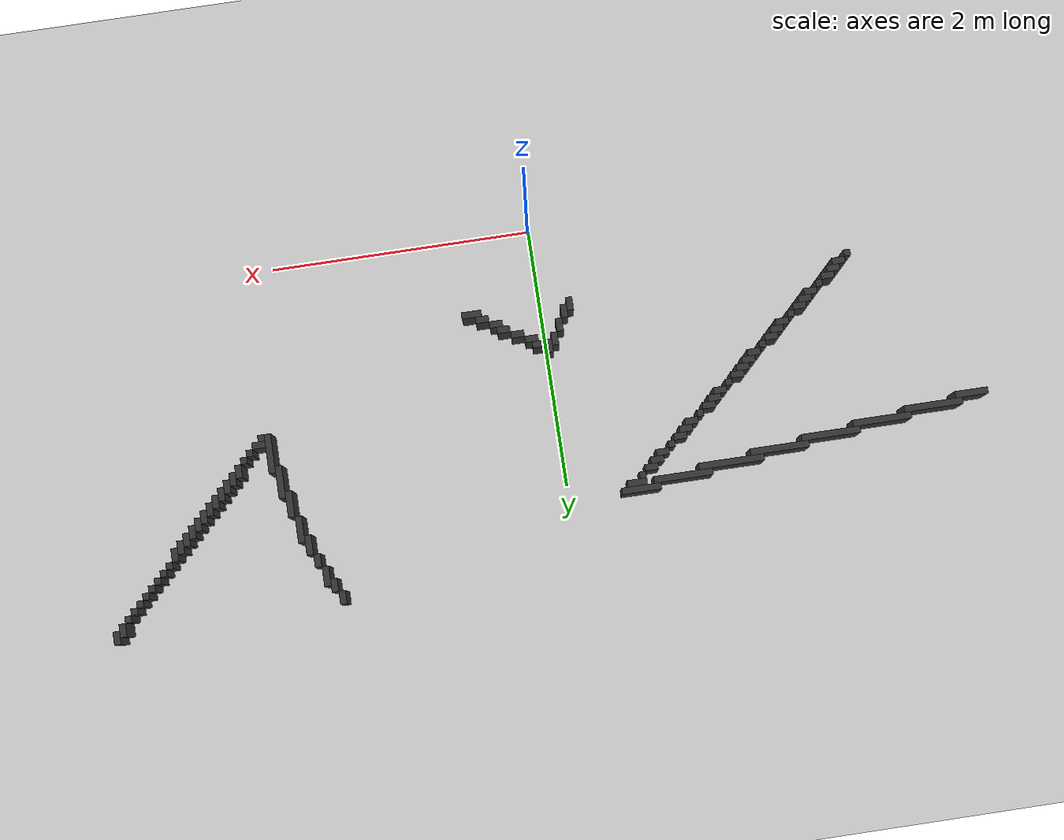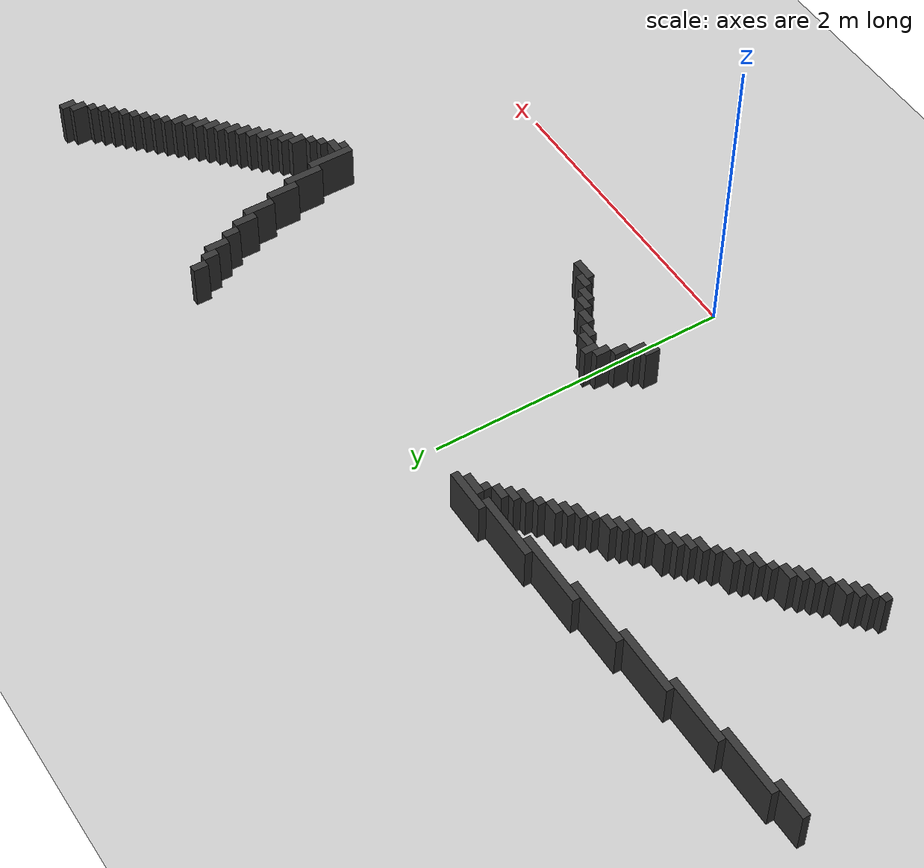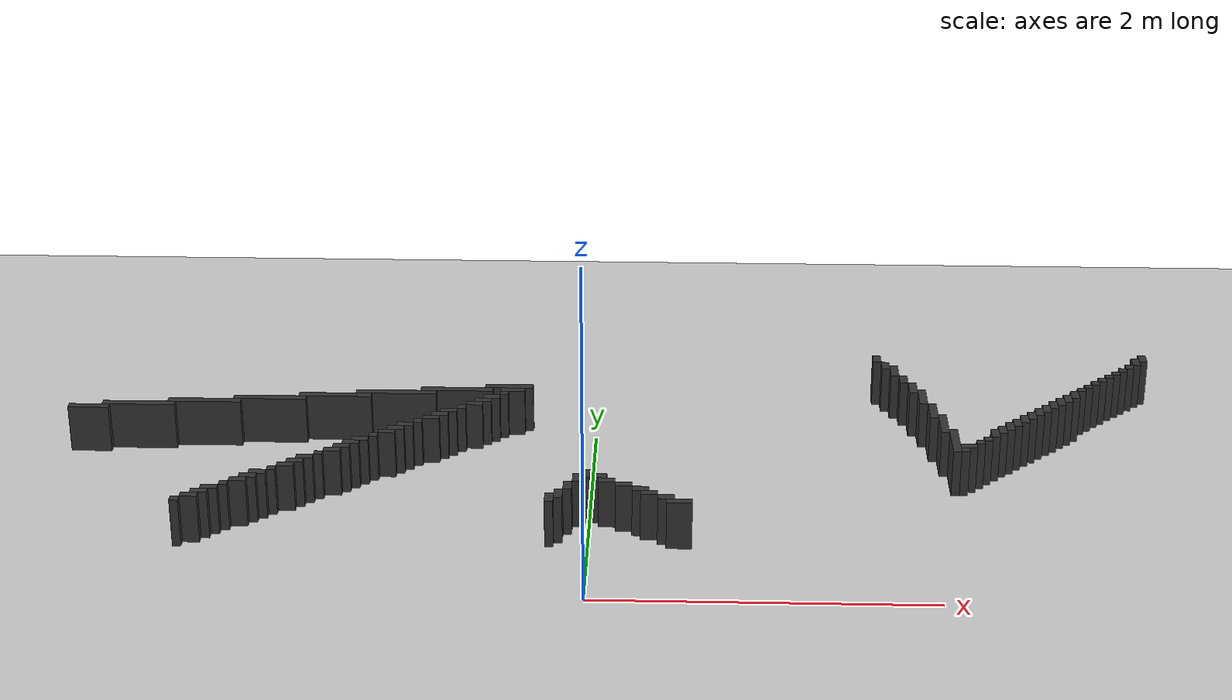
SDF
<sdf version="1.7">
 <world name="mapa_mundo">
  <model name="ground_plane">
   <static>true</static>
   <link name="link">
    <collision name="collision">
     <geometry><plane><normal>0 0 1</normal><size>10 10</size></plane></geometry>
     <surface><friction><ode><mu>100</mu><mu2>50</mu2></ode></friction></surface>
    </collision>
    <visual name="visual">
     <geometry><plane><normal>0 0 1</normal><size>10 10</size></plane></geometry>
     <material>
      <ambient>0.8 0.8 0.8 1</ambient>
      <diffuse>0.8 0.8 0.8 1</diffuse>
      <specular>0.8 0.8 0.8 1</specular>
     </material>
    </visual>
   </link>
  </model>
  <model name="wall_85">
   <static>true</static>
   <link name="link">
    <collision name="collision"><geometry><box><size>0.05 0.1 0.3</size></box></geometry></collision>
    <visual name="visual">
     <geometry><box><size>0.05 0.1 0.3</size></box></geometry>
     <material><ambient>0.2 0.2 0.2 1</ambient><diffuse>0.2 0.2 0.2 1</diffuse></material>
    </visual>
    <pose>3.475 2.6500000000000004 0.15 0 0 0</pose>
   </link>
  </model>
  <model name="wall_86">
   <static>true</static>
   <link name="link">
    <collision name="collision"><geometry><box><size>0.05 0.1 0.3</size></box></geometry></collision>
    <visual name="visual">
     <geometry><box><size>0.05 0.1 0.3</size></box></geometry>
     <material><ambient>0.2 0.2 0.2 1</ambient><diffuse>0.2 0.2 0.2 1</diffuse></material>
    </visual>
    <pose>1.7750000000000001 2.6 0.15 0 0 0</pose>
   </link>
  </model>
  <model name="wall_87">
   <static>true</static>
   <link name="link">
    <collision name="collision"><geometry><box><size>0.05 0.1 0.3</size></box></geometry></collision>
    <visual name="visual">
     <geometry><box><size>0.05 0.1 0.3</size></box></geometry>
     <material><ambient>0.2 0.2 0.2 1</ambient><diffuse>0.2 0.2 0.2 1</diffuse></material>
    </visual>
    <pose>3.4250000000000003 2.6 0.15 0 0 0</pose>
   </link>
  </model>
  <model name="wall_88">
   <static>true</static>
   <link name="link">
    <collision name="collision"><geometry><box><size>0.05 0.1 0.3</size></box></geometry></collision>
    <visual name="visual">
     <geometry><box><size>0.05 0.1 0.3</size></box></geometry>
     <material><ambient>0.2 0.2 0.2 1</ambient><diffuse>0.2 0.2 0.2 1</diffuse></material>
    </visual>
    <pose>1.8250000000000002 2.5 0.15 0 0 0</pose>
   </link>
  </model>
  <model name="wall_89">
   <static>true</static>
   <link name="link">
    <collision name="collision"><geometry><box><size>0.05 0.05 0.3</size></box></geometry></collision>
    <visual name="visual">
     <geometry><box><size>0.05 0.05 0.3</size></box></geometry>
     <material><ambient>0.2 0.2 0.2 1</ambient><diffuse>0.2 0.2 0.2 1</diffuse></material>
    </visual>
    <pose>3.375 2.5250000000000004 0.15 0 0 0</pose>
   </link>
  </model>
  <model name="wall_90">
   <static>true</static>
   <link name="link">
    <collision name="collision">
     <geometry><box><size>0.05 0.15000000000000002 0.3</size></box></geometry>
    </collision>
    <visual name="visual">
     <geometry><box><size>0.05 0.15000000000000002 0.3</size></box></geometry>
     <material><ambient>0.2 0.2 0.2 1</ambient><diffuse>0.2 0.2 0.2 1</diffuse></material>
    </visual>
    <pose>1.875 2.4250000000000003 0.15 0 0 0</pose>
   </link>
  </model>
  <model name="wall_91">
   <static>true</static>
   <link name="link">
    <collision name="collision"><geometry><box><size>0.05 0.05 0.3</size></box></geometry></collision>
    <visual name="visual">
     <geometry><box><size>0.05 0.05 0.3</size></box></geometry>
     <material><ambient>0.2 0.2 0.2 1</ambient><diffuse>0.2 0.2 0.2 1</diffuse></material>
    </visual>
    <pose>3.325 2.475 0.15 0 0 0</pose>
   </link>
  </model>
  <model name="wall_92">
   <static>true</static>
   <link name="link">
    <collision name="collision"><geometry><box><size>0.05 0.05 0.3</size></box></geometry></collision>
    <visual name="visual">
     <geometry><box><size>0.05 0.05 0.3</size></box></geometry>
     <material><ambient>0.2 0.2 0.2 1</ambient><diffuse>0.2 0.2 0.2 1</diffuse></material>
    </visual>
    <pose>3.2750000000000004 2.4250000000000003 0.15 0 0 0</pose>
   </link>
  </model>
  <model name="wall_93">
   <static>true</static>
   <link name="link">
    <collision name="collision"><geometry><box><size>0.05 0.05 0.3</size></box></geometry></collision>
    <visual name="visual">
     <geometry><box><size>0.05 0.05 0.3</size></box></geometry>
     <material><ambient>0.2 0.2 0.2 1</ambient><diffuse>0.2 0.2 0.2 1</diffuse></material>
    </visual>
    <pose>3.225 2.375 0.15 0 0 0</pose>
   </link>
  </model>
  <model name="wall_94">
   <static>true</static>
   <link name="link">
    <collision name="collision"><geometry><box><size>0.05 0.1 0.3</size></box></geometry></collision>
    <visual name="visual">
     <geometry><box><size>0.05 0.1 0.3</size></box></geometry>
     <material><ambient>0.2 0.2 0.2 1</ambient><diffuse>0.2 0.2 0.2 1</diffuse></material>
    </visual>
    <pose>1.925 2.3000000000000003 0.15 0 0 0</pose>
   </link>
  </model>
  <model name="wall_95">
   <static>true</static>
   <link name="link">
    <collision name="collision"><geometry><box><size>0.05 0.05 0.3</size></box></geometry></collision>
    <visual name="visual">
     <geometry><box><size>0.05 0.05 0.3</size></box></geometry>
     <material><ambient>0.2 0.2 0.2 1</ambient><diffuse>0.2 0.2 0.2 1</diffuse></material>
    </visual>
    <pose>3.1750000000000003 2.325 0.15 0 0 0</pose>
   </link>
  </model>
  <model name="wall_96">
   <static>true</static>
   <link name="link">
    <collision name="collision"><geometry><box><size>0.05 0.05 0.3</size></box></geometry></collision>
    <visual name="visual">
     <geometry><box><size>0.05 0.05 0.3</size></box></geometry>
     <material><ambient>0.2 0.2 0.2 1</ambient><diffuse>0.2 0.2 0.2 1</diffuse></material>
    </visual>
    <pose>3.125 2.275 0.15 0 0 0</pose>
   </link>
  </model>
  <model name="wall_97">
   <static>true</static>
   <link name="link">
    <collision name="collision">
     <geometry><box><size>0.05 0.15000000000000002 0.3</size></box></geometry>
    </collision>
    <visual name="visual">
     <geometry><box><size>0.05 0.15000000000000002 0.3</size></box></geometry>
     <material><ambient>0.2 0.2 0.2 1</ambient><diffuse>0.2 0.2 0.2 1</diffuse></material>
    </visual>
    <pose>1.975 2.1750000000000003 0.15 0 0 0</pose>
   </link>
  </model>
  <model name="wall_98">
   <static>true</static>
   <link name="link">
    <collision name="collision"><geometry><box><size>0.05 0.05 0.3</size></box></geometry></collision>
    <visual name="visual">
     <geometry><box><size>0.05 0.05 0.3</size></box></geometry>
     <material><ambient>0.2 0.2 0.2 1</ambient><diffuse>0.2 0.2 0.2 1</diffuse></material>
    </visual>
    <pose>3.075 2.225 0.15 0 0 0</pose>
   </link>
  </model>
  <model name="wall_99">
   <static>true</static>
   <link name="link">
    <collision name="collision"><geometry><box><size>0.05 0.05 0.3</size></box></geometry></collision>
    <visual name="visual">
     <geometry><box><size>0.05 0.05 0.3</size></box></geometry>
     <material><ambient>0.2 0.2 0.2 1</ambient><diffuse>0.2 0.2 0.2 1</diffuse></material>
    </visual>
    <pose>3.0250000000000004 2.1750000000000003 0.15 0 0 0</pose>
   </link>
  </model>
  <model name="wall_100">
   <static>true</static>
   <link name="link">
    <collision name="collision">
     <geometry><box><size>0.30000000000000004 0.05 0.3</size></box></geometry>
    </collision>
    <visual name="visual">
     <geometry><box><size>0.30000000000000004 0.05 0.3</size></box></geometry>
     <material><ambient>0.2 0.2 0.2 1</ambient><diffuse>0.2 0.2 0.2 1</diffuse></material>
    </visual>
    <pose>-0.55 2.125 0.15 0 0 0</pose>
   </link>
  </model>
  <model name="wall_101">
   <static>true</static>
   <link name="link">
    <collision name="collision"><geometry><box><size>0.05 0.2 0.3</size></box></geometry></collision>
    <visual name="visual">
     <geometry><box><size>0.05 0.2 0.3</size></box></geometry>
     <material><ambient>0.2 0.2 0.2 1</ambient><diffuse>0.2 0.2 0.2 1</diffuse></material>
    </visual>
    <pose>2.025 2.0500000000000003 0.15 0 0 0</pose>
   </link>
  </model>
  <model name="wall_102">
   <static>true</static>
   <link name="link">
    <collision name="collision"><geometry><box><size>0.05 0.1 0.3</size></box></geometry></collision>
    <visual name="visual">
     <geometry><box><size>0.05 0.1 0.3</size></box></geometry>
     <material><ambient>0.2 0.2 0.2 1</ambient><diffuse>0.2 0.2 0.2 1</diffuse></material>
    </visual>
    <pose>2.975 2.1 0.15 0 0 0</pose>
   </link>
  </model>
  <model name="wall_103">
   <static>true</static>
   <link name="link">
    <collision name="collision"><geometry><box><size>0.45 0.05 0.3</size></box></geometry></collision>
    <visual name="visual">
     <geometry><box><size>0.45 0.05 0.3</size></box></geometry>
     <material><ambient>0.2 0.2 0.2 1</ambient><diffuse>0.2 0.2 0.2 1</diffuse></material>
    </visual>
    <pose>-0.875 2.075 0.15 0 0 0</pose>
   </link>
  </model>
  <model name="wall_104">
   <static>true</static>
   <link name="link">
    <collision name="collision">
     <geometry><box><size>0.15000000000000002 0.05 0.3</size></box></geometry>
    </collision>
    <visual name="visual">
     <geometry><box><size>0.15000000000000002 0.05 0.3</size></box></geometry>
     <material><ambient>0.2 0.2 0.2 1</ambient><diffuse>0.2 0.2 0.2 1</diffuse></material>
    </visual>
    <pose>-0.525 2.075 0.15 0 0 0</pose>
   </link>
  </model>
  <model name="wall_105">
   <static>true</static>
   <link name="link">
    <collision name="collision"><geometry><box><size>0.05 0.1 0.3</size></box></geometry></collision>
    <visual name="visual">
     <geometry><box><size>0.05 0.1 0.3</size></box></geometry>
     <material><ambient>0.2 0.2 0.2 1</ambient><diffuse>0.2 0.2 0.2 1</diffuse></material>
    </visual>
    <pose>2.9250000000000003 2.0500000000000003 0.15 0 0 0</pose>
   </link>
  </model>
  <model name="wall_106">
   <static>true</static>
   <link name="link">
    <collision name="collision"><geometry><box><size>0.5 0.05 0.3</size></box></geometry></collision>
    <visual name="visual">
     <geometry><box><size>0.5 0.05 0.3</size></box></geometry>
     <material><ambient>0.2 0.2 0.2 1</ambient><diffuse>0.2 0.2 0.2 1</diffuse></material>
    </visual>
    <pose>-1.25 2.025 0.15 0 0 0</pose>
   </link>
  </model>
  <model name="wall_107">
   <static>true</static>
   <link name="link">
    <collision name="collision"><geometry><box><size>0.05 0.05 0.3</size></box></geometry></collision>
    <visual name="visual">
     <geometry><box><size>0.05 0.05 0.3</size></box></geometry>
     <material><ambient>0.2 0.2 0.2 1</ambient><diffuse>0.2 0.2 0.2 1</diffuse></material>
    </visual>
    <pose>-0.5750000000000001 2.025 0.15 0 0 0</pose>
   </link>
  </model>
  <model name="wall_108">
   <static>true</static>
   <link name="link">
    <collision name="collision"><geometry><box><size>0.05 0.1 0.3</size></box></geometry></collision>
    <visual name="visual">
     <geometry><box><size>0.05 0.1 0.3</size></box></geometry>
     <material><ambient>0.2 0.2 0.2 1</ambient><diffuse>0.2 0.2 0.2 1</diffuse></material>
    </visual>
    <pose>2.875 2.0 0.15 0 0 0</pose>
   </link>
  </model>
  <model name="wall_109">
   <static>true</static>
   <link name="link">
    <collision name="collision"><geometry><box><size>0.45 0.05 0.3</size></box></geometry></collision>
    <visual name="visual">
     <geometry><box><size>0.45 0.05 0.3</size></box></geometry>
     <material><ambient>0.2 0.2 0.2 1</ambient><diffuse>0.2 0.2 0.2 1</diffuse></material>
    </visual>
    <pose>-1.625 1.975 0.15 0 0 0</pose>
   </link>
  </model>
  <model name="wall_110">
   <static>true</static>
   <link name="link">
    <collision name="collision"><geometry><box><size>0.1 0.05 0.3</size></box></geometry></collision>
    <visual name="visual">
     <geometry><box><size>0.1 0.05 0.3</size></box></geometry>
     <material><ambient>0.2 0.2 0.2 1</ambient><diffuse>0.2 0.2 0.2 1</diffuse></material>
    </visual>
    <pose>-0.65 1.975 0.15 0 0 0</pose>
   </link>
  </model>
  <model name="wall_111">
   <static>true</static>
   <link name="link">
    <collision name="collision"><geometry><box><size>0.05 0.1 0.3</size></box></geometry></collision>
    <visual name="visual">
     <geometry><box><size>0.05 0.1 0.3</size></box></geometry>
     <material><ambient>0.2 0.2 0.2 1</ambient><diffuse>0.2 0.2 0.2 1</diffuse></material>
    </visual>
    <pose>2.825 1.9500000000000002 0.15 0 0 0</pose>
   </link>
  </model>
  <model name="wall_112">
   <static>true</static>
   <link name="link">
    <collision name="collision"><geometry><box><size>0.45 0.05 0.3</size></box></geometry></collision>
    <visual name="visual">
     <geometry><box><size>0.45 0.05 0.3</size></box></geometry>
     <material><ambient>0.2 0.2 0.2 1</ambient><diffuse>0.2 0.2 0.2 1</diffuse></material>
    </visual>
    <pose>-2.025 1.925 0.15 0 0 0</pose>
   </link>
  </model>
  <model name="wall_113">
   <static>true</static>
   <link name="link">
    <collision name="collision"><geometry><box><size>0.1 0.05 0.3</size></box></geometry></collision>
    <visual name="visual">
     <geometry><box><size>0.1 0.05 0.3</size></box></geometry>
     <material><ambient>0.2 0.2 0.2 1</ambient><diffuse>0.2 0.2 0.2 1</diffuse></material>
    </visual>
    <pose>-0.7000000000000001 1.925 0.15 0 0 0</pose>
   </link>
  </model>
  <model name="wall_114">
   <static>true</static>
   <link name="link">
    <collision name="collision"><geometry><box><size>0.05 0.2 0.3</size></box></geometry></collision>
    <visual name="visual">
     <geometry><box><size>0.05 0.2 0.3</size></box></geometry>
     <material><ambient>0.2 0.2 0.2 1</ambient><diffuse>0.2 0.2 0.2 1</diffuse></material>
    </visual>
    <pose>2.075 1.85 0.15 0 0 0</pose>
   </link>
  </model>
  <model name="wall_115">
   <static>true</static>
   <link name="link">
    <collision name="collision"><geometry><box><size>0.05 0.1 0.3</size></box></geometry></collision>
    <visual name="visual">
     <geometry><box><size>0.05 0.1 0.3</size></box></geometry>
     <material><ambient>0.2 0.2 0.2 1</ambient><diffuse>0.2 0.2 0.2 1</diffuse></material>
    </visual>
    <pose>2.7750000000000004 1.9000000000000001 0.15 0 0 0</pose>
   </link>
  </model>
  <model name="wall_116">
   <static>true</static>
   <link name="link">
    <collision name="collision"><geometry><box><size>0.45 0.05 0.3</size></box></geometry></collision>
    <visual name="visual">
     <geometry><box><size>0.45 0.05 0.3</size></box></geometry>
     <material><ambient>0.2 0.2 0.2 1</ambient><diffuse>0.2 0.2 0.2 1</diffuse></material>
    </visual>
    <pose>-2.4250000000000003 1.875 0.15 0 0 0</pose>
   </link>
  </model>
  <model name="wall_117">
   <static>true</static>
   <link name="link">
    <collision name="collision"><geometry><box><size>0.1 0.05 0.3</size></box></geometry></collision>
    <visual name="visual">
     <geometry><box><size>0.1 0.05 0.3</size></box></geometry>
     <material><ambient>0.2 0.2 0.2 1</ambient><diffuse>0.2 0.2 0.2 1</diffuse></material>
    </visual>
    <pose>-0.75 1.875 0.15 0 0 0</pose>
   </link>
  </model>
  <model name="wall_118">
   <static>true</static>
   <link name="link">
    <collision name="collision"><geometry><box><size>0.05 0.1 0.3</size></box></geometry></collision>
    <visual name="visual">
     <geometry><box><size>0.05 0.1 0.3</size></box></geometry>
     <material><ambient>0.2 0.2 0.2 1</ambient><diffuse>0.2 0.2 0.2 1</diffuse></material>
    </visual>
    <pose>2.725 1.85 0.15 0 0 0</pose>
   </link>
  </model>
  <model name="wall_119">
   <static>true</static>
   <link name="link">
    <collision name="collision"><geometry><box><size>0.45 0.05 0.3</size></box></geometry></collision>
    <visual name="visual">
     <geometry><box><size>0.45 0.05 0.3</size></box></geometry>
     <material><ambient>0.2 0.2 0.2 1</ambient><diffuse>0.2 0.2 0.2 1</diffuse></material>
    </visual>
    <pose>-2.825 1.8250000000000002 0.15 0 0 0</pose>
   </link>
  </model>
  <model name="wall_120">
   <static>true</static>
   <link name="link">
    <collision name="collision"><geometry><box><size>0.05 0.05 0.3</size></box></geometry></collision>
    <visual name="visual">
     <geometry><box><size>0.05 0.05 0.3</size></box></geometry>
     <material><ambient>0.2 0.2 0.2 1</ambient><diffuse>0.2 0.2 0.2 1</diffuse></material>
    </visual>
    <pose>-0.8250000000000001 1.8250000000000002 0.15 0 0 0</pose>
   </link>
  </model>
  <model name="wall_121">
   <static>true</static>
   <link name="link">
    <collision name="collision"><geometry><box><size>0.05 0.1 0.3</size></box></geometry></collision>
    <visual name="visual">
     <geometry><box><size>0.05 0.1 0.3</size></box></geometry>
     <material><ambient>0.2 0.2 0.2 1</ambient><diffuse>0.2 0.2 0.2 1</diffuse></material>
    </visual>
    <pose>2.6750000000000003 1.8 0.15 0 0 0</pose>
   </link>
  </model>
  <model name="wall_122">
   <static>true</static>
   <link name="link">
    <collision name="collision"><geometry><box><size>0.25 0.05 0.3</size></box></geometry></collision>
    <visual name="visual">
     <geometry><box><size>0.25 0.05 0.3</size></box></geometry>
     <material><ambient>0.2 0.2 0.2 1</ambient><diffuse>0.2 0.2 0.2 1</diffuse></material>
    </visual>
    <pose>-3.125 1.7750000000000001 0.15 0 0 0</pose>
   </link>
  </model>
  <model name="wall_123">
   <static>true</static>
   <link name="link">
    <collision name="collision"><geometry><box><size>0.1 0.05 0.3</size></box></geometry></collision>
    <visual name="visual">
     <geometry><box><size>0.1 0.05 0.3</size></box></geometry>
     <material><ambient>0.2 0.2 0.2 1</ambient><diffuse>0.2 0.2 0.2 1</diffuse></material>
    </visual>
    <pose>-0.9 1.7750000000000001 0.15 0 0 0</pose>
   </link>
  </model>
  <model name="wall_124">
   <static>true</static>
   <link name="link">
    <collision name="collision"><geometry><box><size>0.05 0.25 0.3</size></box></geometry></collision>
    <visual name="visual">
     <geometry><box><size>0.05 0.25 0.3</size></box></geometry>
     <material><ambient>0.2 0.2 0.2 1</ambient><diffuse>0.2 0.2 0.2 1</diffuse></material>
    </visual>
    <pose>2.125 1.675 0.15 0 0 0</pose>
   </link>
  </model>
  <model name="wall_125">
   <static>true</static>
   <link name="link">
    <collision name="collision"><geometry><box><size>0.05 0.1 0.3</size></box></geometry></collision>
    <visual name="visual">
     <geometry><box><size>0.05 0.1 0.3</size></box></geometry>
     <material><ambient>0.2 0.2 0.2 1</ambient><diffuse>0.2 0.2 0.2 1</diffuse></material>
    </visual>
    <pose>2.625 1.75 0.15 0 0 0</pose>
   </link>
  </model>
  <model name="wall_126">
   <static>true</static>
   <link name="link">
    <collision name="collision"><geometry><box><size>0.1 0.05 0.3</size></box></geometry></collision>
    <visual name="visual">
     <geometry><box><size>0.1 0.05 0.3</size></box></geometry>
     <material><ambient>0.2 0.2 0.2 1</ambient><diffuse>0.2 0.2 0.2 1</diffuse></material>
    </visual>
    <pose>-0.9500000000000001 1.725 0.15 0 0 0</pose>
   </link>
  </model>
  <model name="wall_127">
   <static>true</static>
   <link name="link">
    <collision name="collision"><geometry><box><size>0.05 0.1 0.3</size></box></geometry></collision>
    <visual name="visual">
     <geometry><box><size>0.05 0.1 0.3</size></box></geometry>
     <material><ambient>0.2 0.2 0.2 1</ambient><diffuse>0.2 0.2 0.2 1</diffuse></material>
    </visual>
    <pose>2.575 1.7000000000000002 0.15 0 0 0</pose>
   </link>
  </model>
  <model name="wall_128">
   <static>true</static>
   <link name="link">
    <collision name="collision"><geometry><box><size>0.1 0.05 0.3</size></box></geometry></collision>
    <visual name="visual">
     <geometry><box><size>0.1 0.05 0.3</size></box></geometry>
     <material><ambient>0.2 0.2 0.2 1</ambient><diffuse>0.2 0.2 0.2 1</diffuse></material>
    </visual>
    <pose>-1.0 1.675 0.15 0 0 0</pose>
   </link>
  </model>
  <model name="wall_129">
   <static>true</static>
   <link name="link">
    <collision name="collision"><geometry><box><size>0.05 0.1 0.3</size></box></geometry></collision>
    <visual name="visual">
     <geometry><box><size>0.05 0.1 0.3</size></box></geometry>
     <material><ambient>0.2 0.2 0.2 1</ambient><diffuse>0.2 0.2 0.2 1</diffuse></material>
    </visual>
    <pose>2.5250000000000004 1.6500000000000001 0.15 0 0 0</pose>
   </link>
  </model>
  <model name="wall_130">
   <static>true</static>
   <link name="link">
    <collision name="collision"><geometry><box><size>0.05 0.05 0.3</size></box></geometry></collision>
    <visual name="visual">
     <geometry><box><size>0.05 0.05 0.3</size></box></geometry>
     <material><ambient>0.2 0.2 0.2 1</ambient><diffuse>0.2 0.2 0.2 1</diffuse></material>
    </visual>
    <pose>-1.075 1.625 0.15 0 0 0</pose>
   </link>
  </model>
  <model name="wall_131">
   <static>true</static>
   <link name="link">
    <collision name="collision"><geometry><box><size>0.05 0.1 0.3</size></box></geometry></collision>
    <visual name="visual">
     <geometry><box><size>0.05 0.1 0.3</size></box></geometry>
     <material><ambient>0.2 0.2 0.2 1</ambient><diffuse>0.2 0.2 0.2 1</diffuse></material>
    </visual>
    <pose>2.475 1.6 0.15 0 0 0</pose>
   </link>
  </model>
  <model name="wall_132">
   <static>true</static>
   <link name="link">
    <collision name="collision"><geometry><box><size>0.1 0.05 0.3</size></box></geometry></collision>
    <visual name="visual">
     <geometry><box><size>0.1 0.05 0.3</size></box></geometry>
     <material><ambient>0.2 0.2 0.2 1</ambient><diffuse>0.2 0.2 0.2 1</diffuse></material>
    </visual>
    <pose>-1.1500000000000001 1.5750000000000002 0.15 0 0 0</pose>
   </link>
  </model>
  <model name="wall_133">
   <static>true</static>
   <link name="link">
    <collision name="collision">
     <geometry><box><size>0.05 0.30000000000000004 0.3</size></box></geometry>
    </collision>
    <visual name="visual">
     <geometry><box><size>0.05 0.30000000000000004 0.3</size></box></geometry>
     <material><ambient>0.2 0.2 0.2 1</ambient><diffuse>0.2 0.2 0.2 1</diffuse></material>
    </visual>
    <pose>2.1750000000000003 1.4500000000000002 0.15 0 0 0</pose>
   </link>
  </model>
  <model name="wall_134">
   <static>true</static>
   <link name="link">
    <collision name="collision"><geometry><box><size>0.05 0.1 0.3</size></box></geometry></collision>
    <visual name="visual">
     <geometry><box><size>0.05 0.1 0.3</size></box></geometry>
     <material><ambient>0.2 0.2 0.2 1</ambient><diffuse>0.2 0.2 0.2 1</diffuse></material>
    </visual>
    <pose>2.4250000000000003 1.55 0.15 0 0 0</pose>
   </link>
  </model>
  <model name="wall_135">
   <static>true</static>
   <link name="link">
    <collision name="collision"><geometry><box><size>0.1 0.05 0.3</size></box></geometry></collision>
    <visual name="visual">
     <geometry><box><size>0.1 0.05 0.3</size></box></geometry>
     <material><ambient>0.2 0.2 0.2 1</ambient><diffuse>0.2 0.2 0.2 1</diffuse></material>
    </visual>
    <pose>-1.2000000000000002 1.5250000000000001 0.15 0 0 0</pose>
   </link>
  </model>
  <model name="wall_136">
   <static>true</static>
   <link name="link">
    <collision name="collision"><geometry><box><size>0.1 0.05 0.3</size></box></geometry></collision>
    <visual name="visual">
     <geometry><box><size>0.1 0.05 0.3</size></box></geometry>
     <material><ambient>0.2 0.2 0.2 1</ambient><diffuse>0.2 0.2 0.2 1</diffuse></material>
    </visual>
    <pose>-1.25 1.475 0.15 0 0 0</pose>
   </link>
  </model>
  <model name="wall_137">
   <static>true</static>
   <link name="link">
    <collision name="collision"><geometry><box><size>0.05 0.05 0.3</size></box></geometry></collision>
    <visual name="visual">
     <geometry><box><size>0.05 0.05 0.3</size></box></geometry>
     <material><ambient>0.2 0.2 0.2 1</ambient><diffuse>0.2 0.2 0.2 1</diffuse></material>
    </visual>
    <pose>2.375 1.475 0.15 0 0 0</pose>
   </link>
  </model>
  <model name="wall_138">
   <static>true</static>
   <link name="link">
    <collision name="collision"><geometry><box><size>0.05 0.05 0.3</size></box></geometry></collision>
    <visual name="visual">
     <geometry><box><size>0.05 0.05 0.3</size></box></geometry>
     <material><ambient>0.2 0.2 0.2 1</ambient><diffuse>0.2 0.2 0.2 1</diffuse></material>
    </visual>
    <pose>-1.3250000000000002 1.425 0.15 0 0 0</pose>
   </link>
  </model>
  <model name="wall_139">
   <static>true</static>
   <link name="link">
    <collision name="collision"><geometry><box><size>0.05 0.05 0.3</size></box></geometry></collision>
    <visual name="visual">
     <geometry><box><size>0.05 0.05 0.3</size></box></geometry>
     <material><ambient>0.2 0.2 0.2 1</ambient><diffuse>0.2 0.2 0.2 1</diffuse></material>
    </visual>
    <pose>2.325 1.425 0.15 0 0 0</pose>
   </link>
  </model>
  <model name="wall_140">
   <static>true</static>
   <link name="link">
    <collision name="collision"><geometry><box><size>0.1 0.05 0.3</size></box></geometry></collision>
    <visual name="visual">
     <geometry><box><size>0.1 0.05 0.3</size></box></geometry>
     <material><ambient>0.2 0.2 0.2 1</ambient><diffuse>0.2 0.2 0.2 1</diffuse></material>
    </visual>
    <pose>-1.4000000000000001 1.375 0.15 0 0 0</pose>
   </link>
  </model>
  <model name="wall_141">
   <static>true</static>
   <link name="link">
    <collision name="collision"><geometry><box><size>0.1 0.05 0.3</size></box></geometry></collision>
    <visual name="visual">
     <geometry><box><size>0.1 0.05 0.3</size></box></geometry>
     <material><ambient>0.2 0.2 0.2 1</ambient><diffuse>0.2 0.2 0.2 1</diffuse></material>
    </visual>
    <pose>2.25 1.375 0.15 0 0 0</pose>
   </link>
  </model>
  <model name="wall_142">
   <static>true</static>
   <link name="link">
    <collision name="collision"><geometry><box><size>0.1 0.05 0.3</size></box></geometry></collision>
    <visual name="visual">
     <geometry><box><size>0.1 0.05 0.3</size></box></geometry>
     <material><ambient>0.2 0.2 0.2 1</ambient><diffuse>0.2 0.2 0.2 1</diffuse></material>
    </visual>
    <pose>-1.4500000000000002 1.3250000000000002 0.15 0 0 0</pose>
   </link>
  </model>
  <model name="wall_143">
   <static>true</static>
   <link name="link">
    <collision name="collision"><geometry><box><size>0.05 0.05 0.3</size></box></geometry></collision>
    <visual name="visual">
     <geometry><box><size>0.05 0.05 0.3</size></box></geometry>
     <material><ambient>0.2 0.2 0.2 1</ambient><diffuse>0.2 0.2 0.2 1</diffuse></material>
    </visual>
    <pose>2.225 1.3250000000000002 0.15 0 0 0</pose>
   </link>
  </model>
  <model name="wall_144">
   <static>true</static>
   <link name="link">
    <collision name="collision"><geometry><box><size>0.1 0.05 0.3</size></box></geometry></collision>
    <visual name="visual">
     <geometry><box><size>0.1 0.05 0.3</size></box></geometry>
     <material><ambient>0.2 0.2 0.2 1</ambient><diffuse>0.2 0.2 0.2 1</diffuse></material>
    </visual>
    <pose>-1.5 1.2750000000000001 0.15 0 0 0</pose>
   </link>
  </model>
  <model name="wall_145">
   <static>true</static>
   <link name="link">
    <collision name="collision"><geometry><box><size>0.1 0.05 0.3</size></box></geometry></collision>
    <visual name="visual">
     <geometry><box><size>0.1 0.05 0.3</size></box></geometry>
     <material><ambient>0.2 0.2 0.2 1</ambient><diffuse>0.2 0.2 0.2 1</diffuse></material>
    </visual>
    <pose>-1.55 1.225 0.15 0 0 0</pose>
   </link>
  </model>
  <model name="wall_146">
   <static>true</static>
   <link name="link">
    <collision name="collision"><geometry><box><size>0.05 0.05 0.3</size></box></geometry></collision>
    <visual name="visual">
     <geometry><box><size>0.05 0.05 0.3</size></box></geometry>
     <material><ambient>0.2 0.2 0.2 1</ambient><diffuse>0.2 0.2 0.2 1</diffuse></material>
    </visual>
    <pose>-1.625 1.175 0.15 0 0 0</pose>
   </link>
  </model>
  <model name="wall_147">
   <static>true</static>
   <link name="link">
    <collision name="collision"><geometry><box><size>0.1 0.05 0.3</size></box></geometry></collision>
    <visual name="visual">
     <geometry><box><size>0.1 0.05 0.3</size></box></geometry>
     <material><ambient>0.2 0.2 0.2 1</ambient><diffuse>0.2 0.2 0.2 1</diffuse></material>
    </visual>
    <pose>-1.7000000000000002 1.125 0.15 0 0 0</pose>
   </link>
  </model>
  <model name="wall_148">
   <static>true</static>
   <link name="link">
    <collision name="collision"><geometry><box><size>0.1 0.05 0.3</size></box></geometry></collision>
    <visual name="visual">
     <geometry><box><size>0.1 0.05 0.3</size></box></geometry>
     <material><ambient>0.2 0.2 0.2 1</ambient><diffuse>0.2 0.2 0.2 1</diffuse></material>
    </visual>
    <pose>-1.75 1.075 0.15 0 0 0</pose>
   </link>
  </model>
  <model name="wall_149">
   <static>true</static>
   <link name="link">
    <collision name="collision"><geometry><box><size>0.1 0.05 0.3</size></box></geometry></collision>
    <visual name="visual">
     <geometry><box><size>0.1 0.05 0.3</size></box></geometry>
     <material><ambient>0.2 0.2 0.2 1</ambient><diffuse>0.2 0.2 0.2 1</diffuse></material>
    </visual>
    <pose>-1.8 1.0250000000000001 0.15 0 0 0</pose>
   </link>
  </model>
  <model name="wall_150">
   <static>true</static>
   <link name="link">
    <collision name="collision"><geometry><box><size>0.05 0.05 0.3</size></box></geometry></collision>
    <visual name="visual">
     <geometry><box><size>0.05 0.05 0.3</size></box></geometry>
     <material><ambient>0.2 0.2 0.2 1</ambient><diffuse>0.2 0.2 0.2 1</diffuse></material>
    </visual>
    <pose>-1.875 0.9750000000000001 0.15 0 0 0</pose>
   </link>
  </model>
  <model name="wall_151">
   <static>true</static>
   <link name="link">
    <collision name="collision"><geometry><box><size>0.05 0.1 0.3</size></box></geometry></collision>
    <visual name="visual">
     <geometry><box><size>0.05 0.1 0.3</size></box></geometry>
     <material><ambient>0.2 0.2 0.2 1</ambient><diffuse>0.2 0.2 0.2 1</diffuse></material>
    </visual>
    <pose>-0.025 0.9500000000000001 0.15 0 0 0</pose>
   </link>
  </model>
  <model name="wall_152">
   <static>true</static>
   <link name="link">
    <collision name="collision"><geometry><box><size>0.1 0.05 0.3</size></box></geometry></collision>
    <visual name="visual">
     <geometry><box><size>0.1 0.05 0.3</size></box></geometry>
     <material><ambient>0.2 0.2 0.2 1</ambient><diffuse>0.2 0.2 0.2 1</diffuse></material>
    </visual>
    <pose>-1.9500000000000002 0.925 0.15 0 0 0</pose>
   </link>
  </model>
  <model name="wall_153">
   <static>true</static>
   <link name="link">
    <collision name="collision"><geometry><box><size>0.05 0.1 0.3</size></box></geometry></collision>
    <visual name="visual">
     <geometry><box><size>0.05 0.1 0.3</size></box></geometry>
     <material><ambient>0.2 0.2 0.2 1</ambient><diffuse>0.2 0.2 0.2 1</diffuse></material>
    </visual>
    <pose>-0.07500000000000001 0.9 0.15 0 0 0</pose>
   </link>
  </model>
  <model name="wall_154">
   <static>true</static>
   <link name="link">
    <collision name="collision"><geometry><box><size>0.1 0.05 0.3</size></box></geometry></collision>
    <visual name="visual">
     <geometry><box><size>0.1 0.05 0.3</size></box></geometry>
     <material><ambient>0.2 0.2 0.2 1</ambient><diffuse>0.2 0.2 0.2 1</diffuse></material>
    </visual>
    <pose>0.05 0.925 0.15 0 0 0</pose>
   </link>
  </model>
  <model name="wall_155">
   <static>true</static>
   <link name="link">
    <collision name="collision"><geometry><box><size>0.1 0.05 0.3</size></box></geometry></collision>
    <visual name="visual">
     <geometry><box><size>0.1 0.05 0.3</size></box></geometry>
     <material><ambient>0.2 0.2 0.2 1</ambient><diffuse>0.2 0.2 0.2 1</diffuse></material>
    </visual>
    <pose>-2.0 0.875 0.15 0 0 0</pose>
   </link>
  </model>
  <model name="wall_156">
   <static>true</static>
   <link name="link">
    <collision name="collision"><geometry><box><size>0.1 0.05 0.3</size></box></geometry></collision>
    <visual name="visual">
     <geometry><box><size>0.1 0.05 0.3</size></box></geometry>
     <material><ambient>0.2 0.2 0.2 1</ambient><diffuse>0.2 0.2 0.2 1</diffuse></material>
    </visual>
    <pose>0.1 0.875 0.15 0 0 0</pose>
   </link>
  </model>
  <model name="wall_157">
   <static>true</static>
   <link name="link">
    <collision name="collision"><geometry><box><size>0.1 0.05 0.3</size></box></geometry></collision>
    <visual name="visual">
     <geometry><box><size>0.1 0.05 0.3</size></box></geometry>
     <material><ambient>0.2 0.2 0.2 1</ambient><diffuse>0.2 0.2 0.2 1</diffuse></material>
    </visual>
    <pose>-2.0500000000000003 0.8250000000000001 0.15 0 0 0</pose>
   </link>
  </model>
  <model name="wall_158">
   <static>true</static>
   <link name="link">
    <collision name="collision"><geometry><box><size>0.05 0.1 0.3</size></box></geometry></collision>
    <visual name="visual">
     <geometry><box><size>0.05 0.1 0.3</size></box></geometry>
     <material><ambient>0.2 0.2 0.2 1</ambient><diffuse>0.2 0.2 0.2 1</diffuse></material>
    </visual>
    <pose>-0.125 0.8 0.15 0 0 0</pose>
   </link>
  </model>
  <model name="wall_159">
   <static>true</static>
   <link name="link">
    <collision name="collision"><geometry><box><size>0.1 0.05 0.3</size></box></geometry></collision>
    <visual name="visual">
     <geometry><box><size>0.1 0.05 0.3</size></box></geometry>
     <material><ambient>0.2 0.2 0.2 1</ambient><diffuse>0.2 0.2 0.2 1</diffuse></material>
    </visual>
    <pose>0.2 0.8250000000000001 0.15 0 0 0</pose>
   </link>
  </model>
  <model name="wall_160">
   <static>true</static>
   <link name="link">
    <collision name="collision"><geometry><box><size>0.05 0.05 0.3</size></box></geometry></collision>
    <visual name="visual">
     <geometry><box><size>0.05 0.05 0.3</size></box></geometry>
     <material><ambient>0.2 0.2 0.2 1</ambient><diffuse>0.2 0.2 0.2 1</diffuse></material>
    </visual>
    <pose>-2.125 0.775 0.15 0 0 0</pose>
   </link>
  </model>
  <model name="wall_161">
   <static>true</static>
   <link name="link">
    <collision name="collision"><geometry><box><size>0.1 0.05 0.3</size></box></geometry></collision>
    <visual name="visual">
     <geometry><box><size>0.1 0.05 0.3</size></box></geometry>
     <material><ambient>0.2 0.2 0.2 1</ambient><diffuse>0.2 0.2 0.2 1</diffuse></material>
    </visual>
    <pose>0.30000000000000004 0.775 0.15 0 0 0</pose>
   </link>
  </model>
  <model name="wall_162">
   <static>true</static>
   <link name="link">
    <collision name="collision"><geometry><box><size>0.1 0.05 0.3</size></box></geometry></collision>
    <visual name="visual">
     <geometry><box><size>0.1 0.05 0.3</size></box></geometry>
     <material><ambient>0.2 0.2 0.2 1</ambient><diffuse>0.2 0.2 0.2 1</diffuse></material>
    </visual>
    <pose>-2.2 0.7250000000000001 0.15 0 0 0</pose>
   </link>
  </model>
  <model name="wall_163">
   <static>true</static>
   <link name="link">
    <collision name="collision"><geometry><box><size>0.05 0.1 0.3</size></box></geometry></collision>
    <visual name="visual">
     <geometry><box><size>0.05 0.1 0.3</size></box></geometry>
     <material><ambient>0.2 0.2 0.2 1</ambient><diffuse>0.2 0.2 0.2 1</diffuse></material>
    </visual>
    <pose>-0.17500000000000002 0.7000000000000001 0.15 0 0 0</pose>
   </link>
  </model>
  <model name="wall_164">
   <static>true</static>
   <link name="link">
    <collision name="collision"><geometry><box><size>0.1 0.05 0.3</size></box></geometry></collision>
    <visual name="visual">
     <geometry><box><size>0.1 0.05 0.3</size></box></geometry>
     <material><ambient>0.2 0.2 0.2 1</ambient><diffuse>0.2 0.2 0.2 1</diffuse></material>
    </visual>
    <pose>0.35000000000000003 0.7250000000000001 0.15 0 0 0</pose>
   </link>
  </model>
  <model name="wall_165">
   <static>true</static>
   <link name="link">
    <collision name="collision"><geometry><box><size>0.1 0.05 0.3</size></box></geometry></collision>
    <visual name="visual">
     <geometry><box><size>0.1 0.05 0.3</size></box></geometry>
     <material><ambient>0.2 0.2 0.2 1</ambient><diffuse>0.2 0.2 0.2 1</diffuse></material>
    </visual>
    <pose>-2.25 0.675 0.15 0 0 0</pose>
   </link>
  </model>
  <model name="wall_166">
   <static>true</static>
   <link name="link">
    <collision name="collision"><geometry><box><size>0.05 0.1 0.3</size></box></geometry></collision>
    <visual name="visual">
     <geometry><box><size>0.05 0.1 0.3</size></box></geometry>
     <material><ambient>0.2 0.2 0.2 1</ambient><diffuse>0.2 0.2 0.2 1</diffuse></material>
    </visual>
    <pose>-0.225 0.65 0.15 0 0 0</pose>
   </link>
  </model>
  <model name="wall_167">
   <static>true</static>
   <link name="link">
    <collision name="collision"><geometry><box><size>0.1 0.05 0.3</size></box></geometry></collision>
    <visual name="visual">
     <geometry><box><size>0.1 0.05 0.3</size></box></geometry>
     <material><ambient>0.2 0.2 0.2 1</ambient><diffuse>0.2 0.2 0.2 1</diffuse></material>
    </visual>
    <pose>0.45 0.675 0.15 0 0 0</pose>
   </link>
  </model>
  <model name="wall_168">
   <static>true</static>
   <link name="link">
    <collision name="collision"><geometry><box><size>0.1 0.05 0.3</size></box></geometry></collision>
    <visual name="visual">
     <geometry><box><size>0.1 0.05 0.3</size></box></geometry>
     <material><ambient>0.2 0.2 0.2 1</ambient><diffuse>0.2 0.2 0.2 1</diffuse></material>
    </visual>
    <pose>-2.3000000000000003 0.625 0.15 0 0 0</pose>
   </link>
  </model>
  <model name="wall_169">
   <static>true</static>
   <link name="link">
    <collision name="collision">
     <geometry><box><size>0.15000000000000002 0.05 0.3</size></box></geometry>
    </collision>
    <visual name="visual">
     <geometry><box><size>0.15000000000000002 0.05 0.3</size></box></geometry>
     <material><ambient>0.2 0.2 0.2 1</ambient><diffuse>0.2 0.2 0.2 1</diffuse></material>
    </visual>
    <pose>0.525 0.625 0.15 0 0 0</pose>
   </link>
  </model>
  <model name="wall_170">
   <static>true</static>
   <link name="link">
    <collision name="collision"><geometry><box><size>0.05 0.05 0.3</size></box></geometry></collision>
    <visual name="visual">
     <geometry><box><size>0.05 0.05 0.3</size></box></geometry>
     <material><ambient>0.2 0.2 0.2 1</ambient><diffuse>0.2 0.2 0.2 1</diffuse></material>
    </visual>
    <pose>-2.375 0.5750000000000001 0.15 0 0 0</pose>
   </link>
  </model>
 </world>
</sdf>
